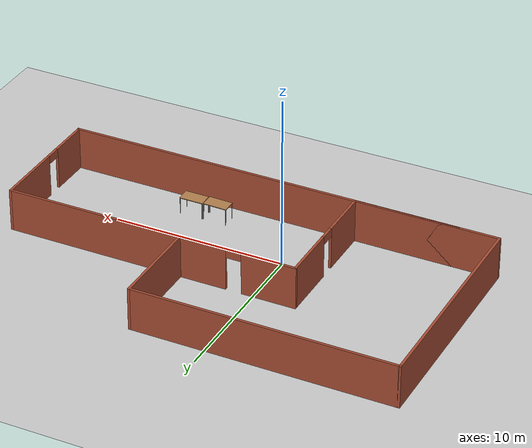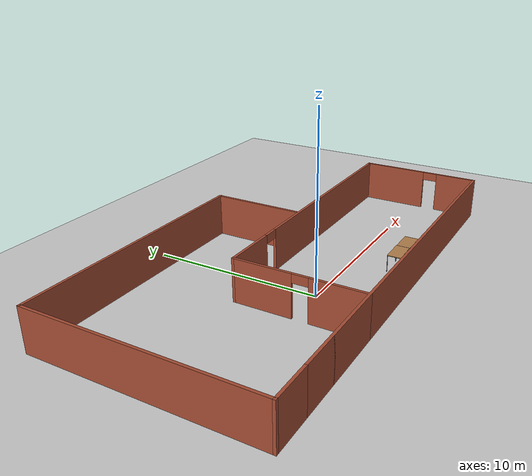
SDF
<sdf version="1.6">
 <world name="default">
  <light name="sun" type="directional">
   <pose>0 0 10 0 -0 0</pose>
   <diffuse>0.8 0.8 0.8 1</diffuse>
   <specular>0.1 0.1 0.1 1</specular>
   <attenuation>
    <range>1000</range>
    <constant>0.9</constant>
    <linear>0.01</linear>
    <quadratic>0.001</quadratic>
   </attenuation>
   <direction>-0.5 0.5 -1</direction>
  </light>
  <model name="ground_plane">
   <static>1</static>
   <link name="link">
    <collision name="collision">
     <geometry><plane><normal>0 0 1</normal><size>100 100</size></plane></geometry>
     <surface><friction><ode><mu>100</mu><mu2>50</mu2></ode></friction></surface>
    </collision>
    <visual name="visual">
     <cast_shadows>0</cast_shadows>
     <geometry><plane><normal>0 0 1</normal><size>100 100</size></plane></geometry>
     <material>
      <script><uri>file://media/materials/scripts/gazebo.material</uri><name>Gazebo/Grey</name></script>
     </material>
    </visual>
   </link>
  </model>
  <gravity>0 0 -9.8</gravity>
  <magnetic_field>6e-06 2.3e-05 -4.2e-05</magnetic_field>
  <atmosphere type="adiabatic"/>
  <physics name="default_physics" default="0" type="ode">
   <max_step_size>0.001</max_step_size>
   <real_time_factor>1</real_time_factor>
   <real_time_update_rate>1000</real_time_update_rate>
  </physics>
  <scene><ambient>0.4 0.4 0.4 1</ambient><background>0.7 0.7 0.7 1</background><shadows>1</shadows></scene>
  <spherical_coordinates>
   <surface_model>EARTH_WGS84</surface_model>
   <latitude_deg>0</latitude_deg>
   <longitude_deg>0</longitude_deg>
   <elevation>0</elevation>
   <heading_deg>0</heading_deg>
  </spherical_coordinates>
  <model name="Untitled_0">
   <pose>1.94627 2.47351 0 0 -0 0</pose>
   <link name="Wall_15">
    <collision name="Wall_15_Collision">
     <geometry><box><size>23.25 0.15 2.5</size></box></geometry>
     <pose>0 0 1.25 0 -0 0</pose>
    </collision>
    <visual name="Wall_15_Visual">
     <pose>0 0 1.25 0 -0 0</pose>
     <geometry><box><size>23.25 0.15 2.5</size></box></geometry>
     <material>
      <script><uri>file://media/materials/scripts/gazebo.material</uri><name>Gazebo/Bricks</name></script>
      <ambient>1 1 1 1</ambient>
     </material>
    </visual>
    <pose>1.175 -6.425 0 0 -0 0</pose>
   </link>
   <link name="Wall_16">
    <pose>12.725 -2.75 0 0 -0 1.5708</pose>
    <visual name="Wall_16_Visual_0">
     <pose>-2.47703 0 1.25 0 -0 0</pose>
     <geometry><box><size>2.54593 0.15 2.5</size></box></geometry>
     <material>
      <script><uri>file://media/materials/scripts/gazebo.material</uri><name>Gazebo/Bricks</name></script>
      <ambient>1 1 1 1</ambient>
     </material>
    </visual>
    <collision name="Wall_16_Collision_0">
     <geometry><box><size>2.54593 0.15 2.5</size></box></geometry>
     <pose>-2.47703 0 1.25 0 -0 0</pose>
    </collision>
    <visual name="Wall_16_Visual_1">
     <pose>1.72297 0 1.25 0 -0 0</pose>
     <geometry><box><size>4.05407 0.15 2.5</size></box></geometry>
     <material>
      <script><uri>file://media/materials/scripts/gazebo.material</uri><name>Gazebo/Bricks</name></script>
      <ambient>1 1 1 1</ambient>
     </material>
    </visual>
    <collision name="Wall_16_Collision_1">
     <geometry><box><size>4.05407 0.15 2.5</size></box></geometry>
     <pose>1.72297 0 1.25 0 -0 0</pose>
    </collision>
    <visual name="Wall_16_Visual_2">
     <pose>-0.754066 0 2.25 0 -0 0</pose>
     <geometry><box><size>0.9 0.15 0.5</size></box></geometry>
     <material>
      <script><uri>file://media/materials/scripts/gazebo.material</uri><name>Gazebo/Bricks</name></script>
      <ambient>1 1 1 1</ambient>
     </material>
    </visual>
    <collision name="Wall_16_Collision_2">
     <geometry><box><size>0.9 0.15 0.5</size></box></geometry>
     <pose>-0.754066 0 2.25 0 -0 0</pose>
    </collision>
   </link>
   <link name="Wall_17">
    <pose>4.175 0.925 0 0 -0 3.14159</pose>
    <visual name="Wall_17_Visual_0">
     <pose>-2.04254 0 1.25 0 -0 0</pose>
     <geometry><box><size>13.1649 0.15 2.5</size></box></geometry>
     <material>
      <script><uri>file://media/materials/scripts/gazebo.material</uri><name>Gazebo/Bricks</name></script>
      <ambient>1 1 1 1</ambient>
     </material>
    </visual>
    <collision name="Wall_17_Collision_0">
     <geometry><box><size>13.1649 0.15 2.5</size></box></geometry>
     <pose>-2.04254 0 1.25 0 -0 0</pose>
    </collision>
    <visual name="Wall_17_Visual_1">
     <pose>7.03246 0 1.25 0 -0 0</pose>
     <geometry><box><size>3.18509 0.15 2.5</size></box></geometry>
     <material>
      <script><uri>file://media/materials/scripts/gazebo.material</uri><name>Gazebo/Bricks</name></script>
      <ambient>1 1 1 1</ambient>
     </material>
    </visual>
    <collision name="Wall_17_Collision_1">
     <geometry><box><size>3.18509 0.15 2.5</size></box></geometry>
     <pose>7.03246 0 1.25 0 -0 0</pose>
    </collision>
    <visual name="Wall_17_Visual_2">
     <pose>4.98991 0 2.25 0 -0 0</pose>
     <geometry><box><size>0.9 0.15 0.5</size></box></geometry>
     <material>
      <script><uri>file://media/materials/scripts/gazebo.material</uri><name>Gazebo/Bricks</name></script>
      <ambient>1 1 1 1</ambient>
     </material>
    </visual>
    <collision name="Wall_17_Collision_2">
     <geometry><box><size>0.9 0.15 0.5</size></box></geometry>
     <pose>4.98991 0 2.25 0 -0 0</pose>
    </collision>
   </link>
   <link name="Wall_18">
    <pose>-4.375 -2.75 0 0 0 -1.5708</pose>
    <visual name="Wall_18_Visual_0">
     <pose>-2.04137 0 1.25 0 -0 0</pose>
     <geometry><box><size>3.41725 0.15 2.5</size></box></geometry>
     <material>
      <script><uri>file://media/materials/scripts/gazebo.material</uri><name>Gazebo/Bricks</name></script>
      <ambient>1 1 1 1</ambient>
     </material>
    </visual>
    <collision name="Wall_18_Collision_0">
     <geometry><box><size>3.41725 0.15 2.5</size></box></geometry>
     <pose>-2.04137 0 1.25 0 -0 0</pose>
    </collision>
    <visual name="Wall_18_Visual_1">
     <pose>2.15863 0 1.25 0 -0 0</pose>
     <geometry><box><size>3.18275 0.15 2.5</size></box></geometry>
     <material>
      <script><uri>file://media/materials/scripts/gazebo.material</uri><name>Gazebo/Bricks</name></script>
      <ambient>1 1 1 1</ambient>
     </material>
    </visual>
    <collision name="Wall_18_Collision_1">
     <geometry><box><size>3.18275 0.15 2.5</size></box></geometry>
     <pose>2.15863 0 1.25 0 -0 0</pose>
    </collision>
    <visual name="Wall_18_Visual_2">
     <pose>0.117253 0 2.25 0 -0 0</pose>
     <geometry><box><size>0.9 0.15 0.5</size></box></geometry>
     <material>
      <script><uri>file://media/materials/scripts/gazebo.material</uri><name>Gazebo/Bricks</name></script>
      <ambient>1 1 1 1</ambient>
     </material>
    </visual>
    <collision name="Wall_18_Collision_2">
     <geometry><box><size>0.9 0.15 0.5</size></box></geometry>
     <pose>0.117253 0 2.25 0 -0 0</pose>
    </collision>
   </link>
   <link name="Wall_19">
    <collision name="Wall_19_Collision">
     <geometry><box><size>8.5 0.15 2.5</size></box></geometry>
     <pose>0 0 1.25 0 -0 0</pose>
    </collision>
    <visual name="Wall_19_Visual">
     <pose>0 0 1.25 0 -0 0</pose>
     <geometry><box><size>8.5 0.15 2.5</size></box></geometry>
     <material>
      <script><uri>file://media/materials/scripts/gazebo.material</uri><name>Gazebo/Bricks</name></script>
      <ambient>1 1 1 1</ambient>
     </material>
    </visual>
    <pose>-8.55 -6.425 0 0 -0 3.14159</pose>
   </link>
   <link name="Wall_20">
    <collision name="Wall_20_Collision">
     <geometry><box><size>13 0.15 2.5</size></box></geometry>
     <pose>0 0 1.25 0 -0 0</pose>
    </collision>
    <visual name="Wall_20_Visual">
     <pose>0 0 1.25 0 -0 0</pose>
     <geometry><box><size>13 0.15 2.5</size></box></geometry>
     <material>
      <script><uri>file://media/materials/scripts/gazebo.material</uri><name>Gazebo/Bricks</name></script>
      <ambient>1 1 1 1</ambient>
     </material>
    </visual>
    <pose>-12.725 0 0 0 -0 1.5708</pose>
   </link>
   <link name="Wall_21">
    <collision name="Wall_21_Collision">
     <geometry><box><size>15.25 0.15 2.5</size></box></geometry>
     <pose>0 0 1.25 0 -0 0</pose>
    </collision>
    <visual name="Wall_21_Visual">
     <pose>0 0 1.25 0 -0 0</pose>
     <geometry><box><size>15.25 0.15 2.5</size></box></geometry>
     <material>
      <script><uri>file://media/materials/scripts/gazebo.material</uri><name>Gazebo/Bricks</name></script>
      <ambient>1 1 1 1</ambient>
     </material>
    </visual>
    <pose>-5.175 6.425 0 0 -0 0</pose>
   </link>
   <link name="Wall_22">
    <collision name="Wall_22_Collision">
     <geometry><box><size>5.5 0.15 2.5</size></box></geometry>
     <pose>0 0 1.25 0 -0 0</pose>
    </collision>
    <visual name="Wall_22_Visual">
     <pose>0 0 1.25 0 -0 0</pose>
     <geometry><box><size>5.5 0.15 2.5</size></box></geometry>
     <material>
      <script><uri>file://media/materials/scripts/gazebo.material</uri><name>Gazebo/Bricks</name></script>
      <ambient>1 1 1 1</ambient>
     </material>
    </visual>
    <pose>2.375 3.75 0 0 0 -1.5708</pose>
   </link>
   <static>1</static>
  </model>
  <model name="table">
   <static>0</static>
   <link name="link">
    <collision name="surface">
     <pose>0 0 1 0 -0 0</pose>
     <geometry><box><size>1.5 0.8 0.03</size></box></geometry>
     <surface><friction><ode><mu>0.6</mu><mu2>0.6</mu2></ode></friction></surface>
    </collision>
    <visual name="visual1">
     <pose>0 0 1 0 -0 0</pose>
     <geometry><box><size>1.4 0.8 0.04</size></box></geometry>
     <material>
      <script><uri>file://media/materials/scripts/gazebo.material</uri><name>Gazebo/Wood</name></script>
     </material>
    </visual>
    <collision name="front_left_leg">
     <pose>0.68 0.38 0.5 0 -0 0</pose>
     <geometry><cylinder><radius>0.02</radius><length>1</length></cylinder></geometry>
    </collision>
    <visual name="front_left_leg">
     <pose>0.68 0.38 0.5 0 -0 0</pose>
     <geometry><cylinder><radius>0.02</radius><length>1</length></cylinder></geometry>
     <material>
      <script><uri>file://media/materials/scripts/gazebo.material</uri><name>Gazebo/Grey</name></script>
     </material>
    </visual>
    <collision name="front_right_leg">
     <pose>0.68 -0.38 0.5 0 -0 0</pose>
     <geometry><cylinder><radius>0.02</radius><length>1</length></cylinder></geometry>
    </collision>
    <visual name="front_right_leg">
     <pose>0.68 -0.38 0.5 0 -0 0</pose>
     <geometry><cylinder><radius>0.02</radius><length>1</length></cylinder></geometry>
     <material>
      <script><uri>file://media/materials/scripts/gazebo.material</uri><name>Gazebo/Grey</name></script>
     </material>
    </visual>
    <collision name="back_right_leg">
     <pose>-0.68 -0.38 0.5 0 -0 0</pose>
     <geometry><cylinder><radius>0.02</radius><length>1</length></cylinder></geometry>
    </collision>
    <visual name="back_right_leg">
     <pose>-0.68 -0.38 0.5 0 -0 0</pose>
     <geometry><cylinder><radius>0.02</radius><length>1</length></cylinder></geometry>
     <material>
      <script><uri>file://media/materials/scripts/gazebo.material</uri><name>Gazebo/Grey</name></script>
     </material>
    </visual>
    <collision name="back_left_leg">
     <pose>-0.68 0.38 0.5 0 -0 0</pose>
     <geometry><cylinder><radius>0.02</radius><length>1</length></cylinder></geometry>
    </collision>
    <visual name="back_left_leg">
     <pose>-0.68 0.38 0.5 0 -0 0</pose>
     <geometry><cylinder><radius>0.02</radius><length>1</length></cylinder></geometry>
     <material>
      <script><uri>file://media/materials/scripts/gazebo.material</uri><name>Gazebo/Grey</name></script>
     </material>
    </visual>
    <inertial>
     <inertia><ixx>1</ixx><ixy>0</ixy><ixz>0</ixz><iyy>1</iyy><iyz>0</iyz><izz>1</izz></inertia>
     <mass>1</mass>
    </inertial>
   </link>
   <pose>6.58132 -2.50488 -3e-06 -0 4e-06 -0.001821</pose>
  </model>
  <model name="table_0">
   <static>0</static>
   <link name="link">
    <collision name="surface">
     <pose>0 0 1 0 -0 0</pose>
     <geometry><box><size>1.5 0.8 0.03</size></box></geometry>
     <surface><friction><ode><mu>0.6</mu><mu2>0.6</mu2></ode></friction></surface>
    </collision>
    <visual name="visual1">
     <pose>0 0 1 0 -0 0</pose>
     <geometry><box><size>1.4 0.8 0.04</size></box></geometry>
     <material>
      <script><uri>file://media/materials/scripts/gazebo.material</uri><name>Gazebo/Wood</name></script>
     </material>
    </visual>
    <collision name="front_left_leg">
     <pose>0.68 0.38 0.5 0 -0 0</pose>
     <geometry><cylinder><radius>0.02</radius><length>1</length></cylinder></geometry>
    </collision>
    <visual name="front_left_leg">
     <pose>0.68 0.38 0.5 0 -0 0</pose>
     <geometry><cylinder><radius>0.02</radius><length>1</length></cylinder></geometry>
     <material>
      <script><uri>file://media/materials/scripts/gazebo.material</uri><name>Gazebo/Grey</name></script>
     </material>
    </visual>
    <collision name="front_right_leg">
     <pose>0.68 -0.38 0.5 0 -0 0</pose>
     <geometry><cylinder><radius>0.02</radius><length>1</length></cylinder></geometry>
    </collision>
    <visual name="front_right_leg">
     <pose>0.68 -0.38 0.5 0 -0 0</pose>
     <geometry><cylinder><radius>0.02</radius><length>1</length></cylinder></geometry>
     <material>
      <script><uri>file://media/materials/scripts/gazebo.material</uri><name>Gazebo/Grey</name></script>
     </material>
    </visual>
    <collision name="back_right_leg">
     <pose>-0.68 -0.38 0.5 0 -0 0</pose>
     <geometry><cylinder><radius>0.02</radius><length>1</length></cylinder></geometry>
    </collision>
    <visual name="back_right_leg">
     <pose>-0.68 -0.38 0.5 0 -0 0</pose>
     <geometry><cylinder><radius>0.02</radius><length>1</length></cylinder></geometry>
     <material>
      <script><uri>file://media/materials/scripts/gazebo.material</uri><name>Gazebo/Grey</name></script>
     </material>
    </visual>
    <collision name="back_left_leg">
     <pose>-0.68 0.38 0.5 0 -0 0</pose>
     <geometry><cylinder><radius>0.02</radius><length>1</length></cylinder></geometry>
    </collision>
    <visual name="back_left_leg">
     <pose>-0.68 0.38 0.5 0 -0 0</pose>
     <geometry><cylinder><radius>0.02</radius><length>1</length></cylinder></geometry>
     <material>
      <script><uri>file://media/materials/scripts/gazebo.material</uri><name>Gazebo/Grey</name></script>
     </material>
    </visual>
    <inertial>
     <inertia><ixx>1</ixx><ixy>0</ixy><ixz>0</ixz><iyy>1</iyy><iyz>0</iyz><izz>1</izz></inertia>
     <mass>1</mass>
    </inertial>
   </link>
   <pose>5.15046 -2.51001 0.015139 -3.9e-05 -0.021518 0.002292</pose>
  </model>
 </world>
</sdf>
